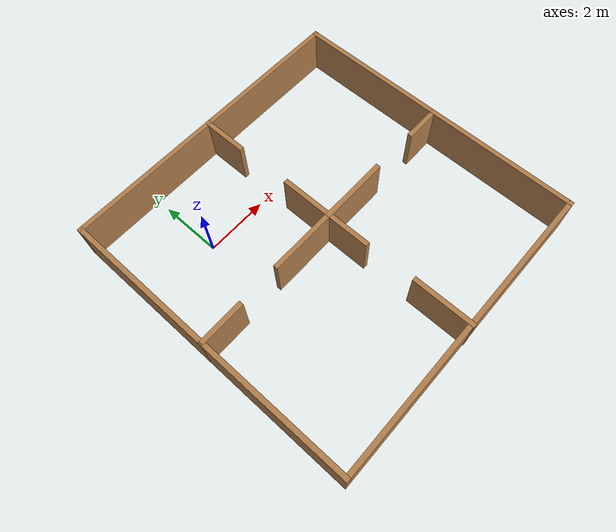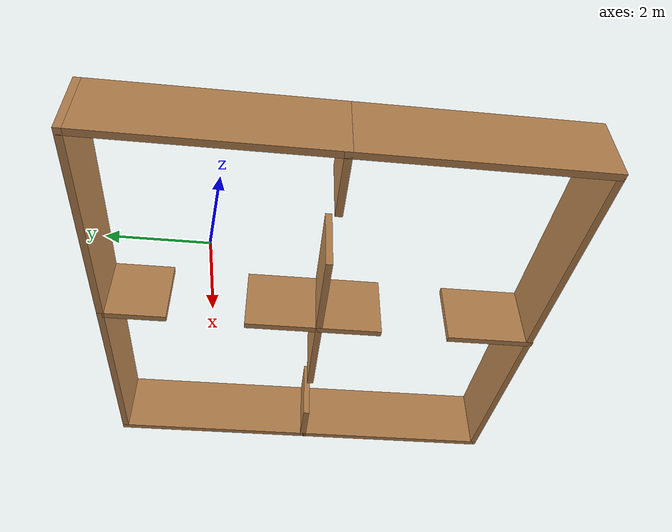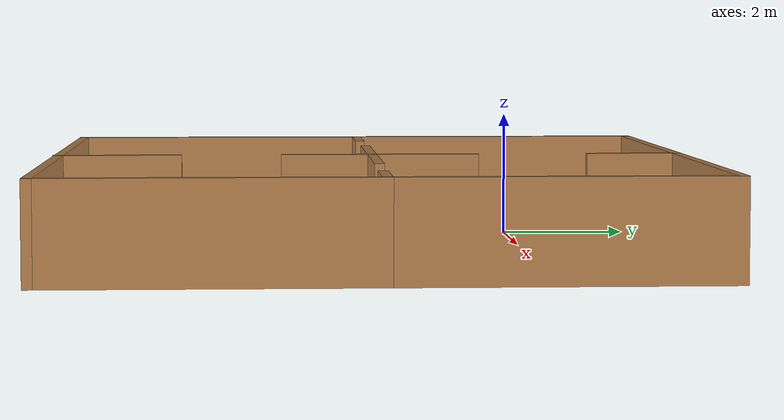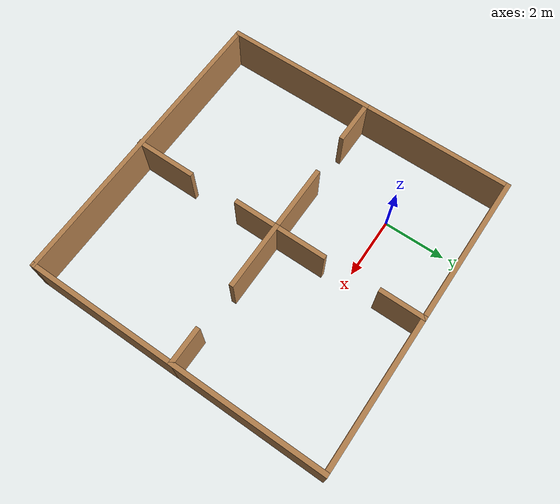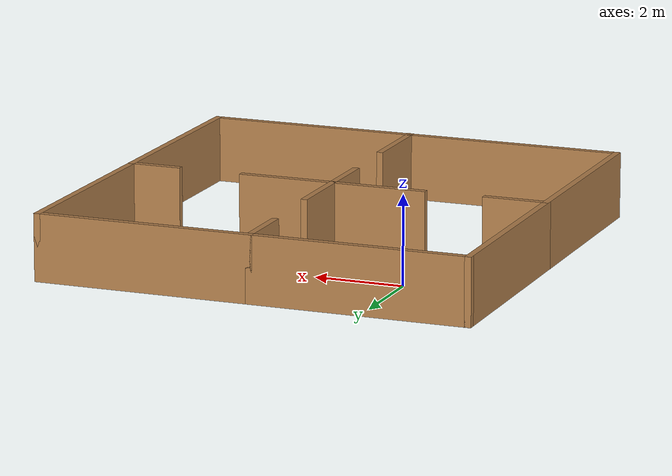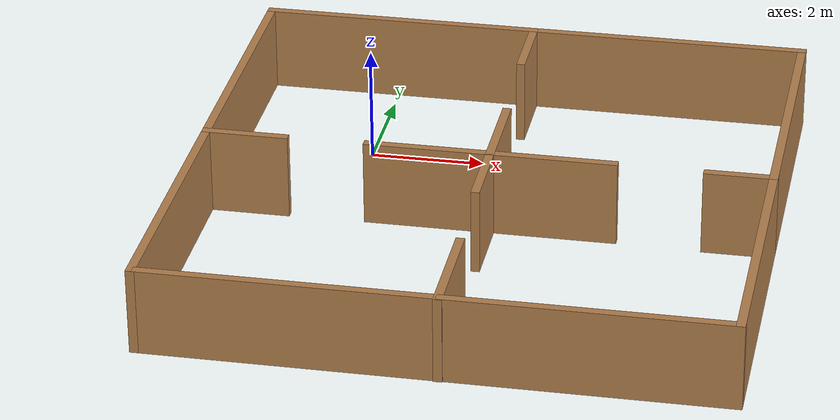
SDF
<?xml version='1.0'?>
<sdf version='1.6'>
  <model name='room_4'>
    <pose frame=''>2.481 -2.4 0 0 -0 0</pose>
    <link name='Wall_0'>
      <collision name='Wall_0_Collision'>
        <geometry>
          <box>
            <size>5 0.15 1.5</size>
          </box>
        </geometry>
        <pose frame=''>0 0 0.75 0 -0 0</pose>
      </collision>
      <visual name='Wall_0_Visual'>
        <pose frame=''>0 0 0.75 0 -0 0</pose>
        <geometry>
          <box>
            <size>5 0.15 1.5</size>
          </box>
        </geometry>
        <material>
          <script>
            <uri>file://media/materials/scripts/gazebo.material</uri>
            <name>Gazebo/Wood</name>
          </script>
          <ambient>1 1 1 1</ambient>
        </material>
        <meta>
          <layer>0</layer>
        </meta>
      </visual>
      <pose frame=''>-2.425 4.86 0 0 -0 0</pose>
    </link>
    <link name='Wall_13'>
      <collision name='Wall_13_Collision'>
        <geometry>
          <box>
            <size>5 0.15 1.5</size>
          </box>
        </geometry>
        <pose frame=''>0 0 0.75 0 -0 0</pose>
      </collision>
      <visual name='Wall_13_Visual'>
        <pose frame=''>0 0 0.75 0 -0 0</pose>
        <geometry>
          <box>
            <size>5 0.15 1.5</size>
          </box>
        </geometry>
        <material>
          <script>
            <uri>file://media/materials/scripts/gazebo.material</uri>
            <name>Gazebo/Wood</name>
          </script>
          <ambient>1 1 1 1</ambient>
        </material>
        <meta>
          <layer>0</layer>
        </meta>
      </visual>
      <pose frame=''>2.425 4.86 0 0 -0 0</pose>
    </link>
    <link name='Wall_15'>
      <collision name='Wall_15_Collision'>
        <geometry>
          <box>
            <size>5 0.15 1.5</size>
          </box>
        </geometry>
        <pose frame=''>0 0 0.75 0 -0 0</pose>
      </collision>
      <visual name='Wall_15_Visual'>
        <pose frame=''>0 0 0.75 0 -0 0</pose>
        <geometry>
          <box>
            <size>5 0.15 1.5</size>
          </box>
        </geometry>
        <material>
          <script>
            <uri>file://media/materials/scripts/gazebo.material</uri>
            <name>Gazebo/Wood</name>
          </script>
          <ambient>1 1 1 1</ambient>
        </material>
        <meta>
          <layer>0</layer>
        </meta>
      </visual>
      <pose frame=''>4.85 2.435 0 0 -0 -1.5708</pose>
    </link>
    <link name='Wall_16'>
      <collision name='Wall_16_Collision'>
        <geometry>
          <box>
            <size>1.25 0.15 1.5</size>
          </box>
        </geometry>
        <pose frame=''>0 0 0.75 0 -0 0</pose>
      </collision>
      <visual name='Wall_16_Visual'>
        <pose frame=''>0 0 0.75 0 -0 0</pose>
        <geometry>
          <box>
            <size>1.25 0.15 1.5</size>
          </box>
        </geometry>
        <material>
          <script>
            <uri>file://media/materials/scripts/gazebo.material</uri>
            <name>Gazebo/Wood</name>
          </script>
          <ambient>1 1 1 1</ambient>
        </material>
        <meta>
          <layer>0</layer>
        </meta>
      </visual>
      <pose frame=''>4.3 0.01 0 0 -0 3.14159</pose>
    </link>
    <link name='Wall_18'>
      <collision name='Wall_18_Collision'>
        <geometry>
          <box>
            <size>2.25 0.15 1.5</size>
          </box>
        </geometry>
        <pose frame=''>0 0 0.75 0 -0 0</pose>
      </collision>
      <visual name='Wall_18_Visual'>
        <pose frame=''>0 0 0.75 0 -0 0</pose>
        <geometry>
          <box>
            <size>2.25 0.15 1.5</size>
          </box>
        </geometry>
        <material>
          <script>
            <uri>file://media/materials/scripts/gazebo.material</uri>
            <name>Gazebo/Wood</name>
          </script>
          <ambient>1 1 1 1</ambient>
        </material>
        <meta>
          <layer>0</layer>
        </meta>
      </visual>
      <pose frame=''>1.107 0.039 0 0 -0 0</pose>
    </link>
    <link name='Wall_20'>
      <collision name='Wall_20_Collision'>
        <geometry>
          <box>
            <size>1.5 0.15 1.5</size>
          </box>
        </geometry>
        <pose frame=''>0 0 0.75 0 -0 0</pose>
      </collision>
      <visual name='Wall_20_Visual'>
        <pose frame=''>0 0 0.75 0 -0 0</pose>
        <geometry>
          <box>
            <size>1.5 0.15 1.5</size>
          </box>
        </geometry>
        <material>
          <script>
            <uri>file://media/materials/scripts/gazebo.material</uri>
            <name>Gazebo/Wood</name>
          </script>
          <ambient>1 1 1 1</ambient>
        </material>
        <meta>
          <layer>0</layer>
        </meta>
      </visual>
      <pose frame=''>0.057 -0.636 0 0 -0 -1.5708</pose>
    </link>
    <link name='Wall_23'>
      <collision name='Wall_23_Collision'>
        <geometry>
          <box>
            <size>5 0.15 1.5</size>
          </box>
        </geometry>
        <pose frame=''>0 0 0.75 0 -0 0</pose>
      </collision>
      <visual name='Wall_23_Visual'>
        <pose frame=''>0 0 0.75 0 -0 0</pose>
        <geometry>
          <box>
            <size>5 0.15 1.5</size>
          </box>
        </geometry>
        <material>
          <script>
            <uri>file://media/materials/scripts/gazebo.material</uri>
            <name>Gazebo/Wood</name>
          </script>
          <ambient>1 1 1 1</ambient>
        </material>
        <meta>
          <layer>0</layer>
        </meta>
      </visual>
      <pose frame=''>-4.85 -2.415 0 0 -0 -1.5708</pose>
    </link>
    <link name='Wall_26'>
      <collision name='Wall_26_Collision'>
        <geometry>
          <box>
            <size>5 0.15 1.5</size>
          </box>
        </geometry>
        <pose frame=''>0 0 0.75 0 -0 0</pose>
      </collision>
      <visual name='Wall_26_Visual'>
        <pose frame=''>0 0 0.75 0 -0 0</pose>
        <geometry>
          <box>
            <size>5 0.15 1.5</size>
          </box>
        </geometry>
        <material>
          <script>
            <uri>file://media/materials/scripts/gazebo.material</uri>
            <name>Gazebo/Wood</name>
          </script>
          <ambient>1 1 1 1</ambient>
        </material>
        <meta>
          <layer>0</layer>
        </meta>
      </visual>
      <pose frame=''>4.85 -2.415 0 0 -0 -1.5708</pose>
    </link>
    <link name='Wall_27'>
      <collision name='Wall_27_Collision'>
        <geometry>
          <box>
            <size>9.75 0.15 1.5</size>
          </box>
        </geometry>
        <pose frame=''>0 0 0.75 0 -0 0</pose>
      </collision>
      <visual name='Wall_27_Visual'>
        <pose frame=''>0 0 0.75 0 -0 0</pose>
        <geometry>
          <box>
            <size>9.75 0.15 1.5</size>
          </box>
        </geometry>
        <material>
          <script>
            <uri>file://media/materials/scripts/gazebo.material</uri>
            <name>Gazebo/Wood</name>
          </script>
          <ambient>1 1 1 1</ambient>
        </material>
        <meta>
          <layer>0</layer>
        </meta>
      </visual>
      <pose frame=''>0.05 -4.84 0 0 -0 3.14159</pose>
    </link>
    <link name='Wall_29'>
      <collision name='Wall_29_Collision'>
        <geometry>
          <box>
            <size>2 0.15 1.5</size>
          </box>
        </geometry>
        <pose frame=''>0 0 0.75 0 -0 0</pose>
      </collision>
      <visual name='Wall_29_Visual'>
        <pose frame=''>0 0 0.75 0 -0 0</pose>
        <geometry>
          <box>
            <size>2 0.15 1.5</size>
          </box>
        </geometry>
        <material>
          <script>
            <uri>file://media/materials/scripts/gazebo.material</uri>
            <name>Gazebo/Wood</name>
          </script>
          <ambient>1 1 1 1</ambient>
        </material>
        <meta>
          <layer>0</layer>
        </meta>
      </visual>
      <pose frame=''>0.102 -3.935 0 0 -0 -1.5708</pose>
    </link>
    <link name='Wall_3'>
      <collision name='Wall_3_Collision'>
        <geometry>
          <box>
            <size>5 0.15 1.5</size>
          </box>
        </geometry>
        <pose frame=''>0 0 0.75 0 -0 0</pose>
      </collision>
      <visual name='Wall_3_Visual'>
        <pose frame=''>0 0 0.75 0 -0 0</pose>
        <geometry>
          <box>
            <size>5 0.15 1.5</size>
          </box>
        </geometry>
        <material>
          <script>
            <uri>file://media/materials/scripts/gazebo.material</uri>
            <name>Gazebo/Wood</name>
          </script>
          <ambient>1 1 1 1</ambient>
        </material>
        <meta>
          <layer>0</layer>
        </meta>
      </visual>
      <pose frame=''>-4.85 2.435 0 0 -0 -1.5708</pose>
    </link>
    <link name='Wall_4'>
      <collision name='Wall_4_Collision'>
        <geometry>
          <box>
            <size>1.5 0.15 1.5</size>
          </box>
        </geometry>
        <pose frame=''>0 0 0.75 0 -0 0</pose>
      </collision>
      <visual name='Wall_4_Visual'>
        <pose frame=''>0 0 0.75 0 -0 0</pose>
        <geometry>
          <box>
            <size>1.5 0.15 1.5</size>
          </box>
        </geometry>
        <material>
          <script>
            <uri>file://media/materials/scripts/gazebo.material</uri>
            <name>Gazebo/Wood</name>
          </script>
          <ambient>1 1 1 1</ambient>
        </material>
        <meta>
          <layer>0</layer>
        </meta>
      </visual>
      <pose frame=''>-4.175 0.01 0 0 -0 0</pose>
    </link>
    <link name='Wall_6'>
      <collision name='Wall_6_Collision'>
        <geometry>
          <box>
            <size>1.5 0.15 1.5</size>
          </box>
        </geometry>
        <pose frame=''>0 0 0.75 0 -0 0</pose>
      </collision>
      <visual name='Wall_6_Visual'>
        <pose frame=''>0 0 0.75 0 -0 0</pose>
        <geometry>
          <box>
            <size>1.5 0.15 1.5</size>
          </box>
        </geometry>
        <material>
          <script>
            <uri>file://media/materials/scripts/gazebo.material</uri>
            <name>Gazebo/Wood</name>
          </script>
          <ambient>1 1 1 1</ambient>
        </material>
        <meta>
          <layer>0</layer>
        </meta>
      </visual>
      <pose frame=''>0 4.185 0 0 -0 -1.5708</pose>
    </link>
    <link name='Wall_8'>
      <collision name='Wall_8_Collision'>
        <geometry>
          <box>
            <size>2.25 0.15 1.5</size>
          </box>
        </geometry>
        <pose frame=''>0 0 0.75 0 -0 0</pose>
      </collision>
      <visual name='Wall_8_Visual'>
        <pose frame=''>0 0 0.75 0 -0 0</pose>
        <geometry>
          <box>
            <size>2.25 0.15 1.5</size>
          </box>
        </geometry>
        <material>
          <script>
            <uri>file://media/materials/scripts/gazebo.material</uri>
            <name>Gazebo/Wood</name>
          </script>
          <ambient>1 1 1 1</ambient>
        </material>
        <meta>
          <layer>0</layer>
        </meta>
      </visual>
      <pose frame=''>-0.993 0.039 0 0 -0 0</pose>
    </link>
    <link name='Wall_9'>
      <collision name='Wall_9_Collision'>
        <geometry>
          <box>
            <size>1.75 0.15 1.5</size>
          </box>
        </geometry>
        <pose frame=''>0 0 0.75 0 -0 0</pose>
      </collision>
      <visual name='Wall_9_Visual'>
        <pose frame=''>0 0 0.75 0 -0 0</pose>
        <geometry>
          <box>
            <size>1.75 0.15 1.5</size>
          </box>
        </geometry>
        <material>
          <script>
            <uri>file://media/materials/scripts/gazebo.material</uri>
            <name>Gazebo/Wood</name>
          </script>
          <ambient>1 1 1 1</ambient>
        </material>
        <meta>
          <layer>0</layer>
        </meta>
      </visual>
      <pose frame=''>0.057 0.839 0 0 -0 1.5708</pose>
    </link>
    <static>1</static>
  </model>
</sdf>
